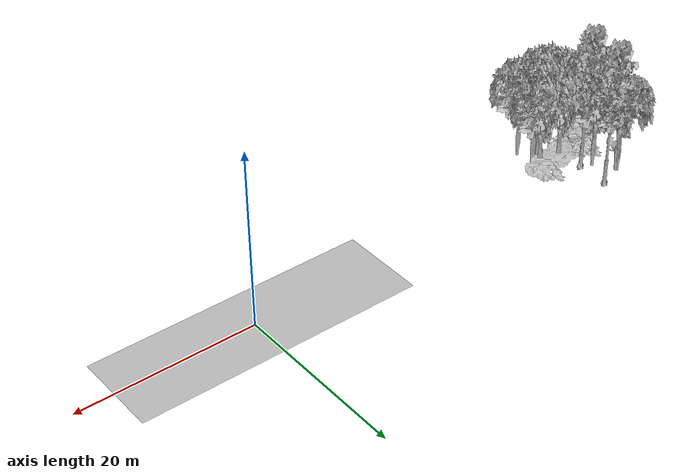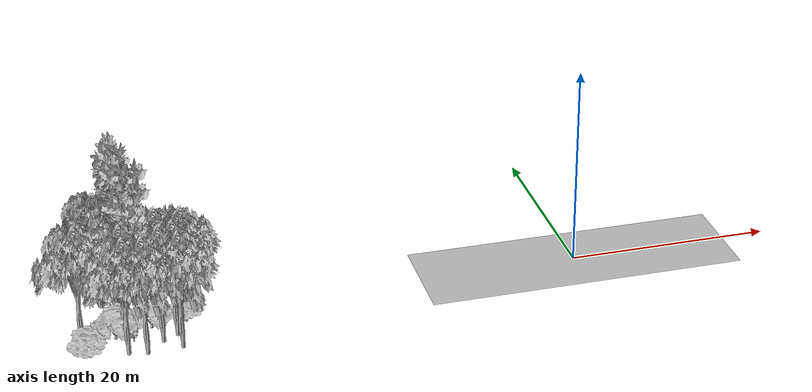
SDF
<sdf version="1.7">
 <world name="default">
  <model name="ground_plane">
   <static>1</static>
   <link name="link">
    <collision name="collision">
     <pose>-50 0 0 0 -0 0</pose>
     <geometry><plane><normal>0 0 1</normal><size>100 100</size></plane></geometry>
     <surface><contact><ode><min_depth>0.01</min_depth><max_vel>0</max_vel></ode></contact></surface>
    </collision>
    <visual name="grass">
     <cast_shadows>0</cast_shadows>
     <geometry>
      <mesh>
       <scale>0.5814285714285714 0.18142857142857144 0.1</scale>
       <uri>file://grass_plane/meshes/grass_plane.dae</uri>
      </mesh>
     </geometry>
    </visual>
   </link>
  </model>
  <model name="Tree 23">
   <static>1</static>
   <pose>-41.37176256263588 -4.454853935062301 0 1.57079 -0 0</pose>
   <link name="link">
    <collision name="collision">
     <geometry><mesh><scale>3.5 5 3.5</scale><uri>model://tree_2/meshes/tree_2.obj</uri></mesh></geometry>
    </collision>
    <visual name="visual">
     <geometry><mesh><scale>3.5 5 3.5</scale><uri>model://tree_2/meshes/tree_2.obj</uri></mesh></geometry>
    </visual>
   </link>
  </model>
  <model name="Tree 27">
   <static>1</static>
   <pose>-46.30135250556976 3.190948742560927 0 1.57079 -0 0</pose>
   <link name="link">
    <collision name="collision">
     <geometry><mesh><scale>3.5 5 3.5</scale><uri>model://tree_2/meshes/tree_2.obj</uri></mesh></geometry>
    </collision>
    <visual name="visual">
     <geometry><mesh><scale>3.5 5 3.5</scale><uri>model://tree_2/meshes/tree_2.obj</uri></mesh></geometry>
    </visual>
   </link>
  </model>
  <model name="Tree 38">
   <static>1</static>
   <pose>-44.737884061568124 -5.737415419953194 0 1.57079 -0 0</pose>
   <link name="link">
    <collision name="collision">
     <geometry><mesh><scale>3.5 5 3.5</scale><uri>model://tree_2/meshes/tree_2.obj</uri></mesh></geometry>
    </collision>
    <visual name="visual">
     <geometry><mesh><scale>3.5 5 3.5</scale><uri>model://tree_2/meshes/tree_2.obj</uri></mesh></geometry>
    </visual>
   </link>
  </model>
  <model name="Tree 51">
   <static>1</static>
   <pose>-45.473820462327836 -2.637676971827874 0 1.57079 -0 0</pose>
   <link name="link">
    <collision name="collision">
     <geometry><mesh><scale>3 2 3</scale><uri>model://tree_3/meshes/tree_3.obj</uri></mesh></geometry>
    </collision>
    <visual name="visual">
     <geometry><mesh><scale>3 2 3</scale><uri>model://tree_3/meshes/tree_3.obj</uri></mesh></geometry>
    </visual>
   </link>
  </model>
  <model name="Tree 55">
   <static>1</static>
   <pose>-48.63088996787695 -2.6575167536044475 0 1.57079 -0 0</pose>
   <link name="link">
    <collision name="collision">
     <geometry><mesh><scale>3.5 5 3.5</scale><uri>model://tree_2/meshes/tree_2.obj</uri></mesh></geometry>
    </collision>
    <visual name="visual">
     <geometry><mesh><scale>3.5 5 3.5</scale><uri>model://tree_2/meshes/tree_2.obj</uri></mesh></geometry>
    </visual>
   </link>
  </model>
  <model name="Tree 70">
   <static>1</static>
   <pose>-43.05283040350833 -6.099827330976208 0 1.57079 -0 0</pose>
   <link name="link">
    <collision name="collision">
     <geometry><mesh><scale>3.5 5 3.5</scale><uri>model://tree_2/meshes/tree_2.obj</uri></mesh></geometry>
    </collision>
    <visual name="visual">
     <geometry><mesh><scale>3.5 5 3.5</scale><uri>model://tree_2/meshes/tree_2.obj</uri></mesh></geometry>
    </visual>
   </link>
  </model>
  <model name="Tree 91">
   <static>1</static>
   <pose>-39.352182510271106 -2.250267082425877 0 1.57079 -0 0</pose>
   <link name="link">
    <collision name="collision">
     <geometry><mesh><scale>3.5 5 3.5</scale><uri>model://tree_2/meshes/tree_2.obj</uri></mesh></geometry>
    </collision>
    <visual name="visual">
     <geometry><mesh><scale>3.5 5 3.5</scale><uri>model://tree_2/meshes/tree_2.obj</uri></mesh></geometry>
    </visual>
   </link>
  </model>
  <model name="Tree 98">
   <static>1</static>
   <pose>-41.24725420808651 -0.9652680922754193 0 1.57079 -0 0</pose>
   <link name="link">
    <collision name="collision">
     <geometry><mesh><scale>3.5 5 3.5</scale><uri>model://tree_2/meshes/tree_2.obj</uri></mesh></geometry>
    </collision>
    <visual name="visual">
     <geometry><mesh><scale>3.5 5 3.5</scale><uri>model://tree_2/meshes/tree_2.obj</uri></mesh></geometry>
    </visual>
   </link>
  </model>
  <model name="Tree 125">
   <static>1</static>
   <pose>-39.96006358677858 -3.6790821889221696 0 1.57079 -0 0</pose>
   <link name="link">
    <collision name="collision">
     <geometry><mesh><scale>3.5 5 3.5</scale><uri>model://tree_2/meshes/tree_2.obj</uri></mesh></geometry>
    </collision>
    <visual name="visual">
     <geometry><mesh><scale>3.5 5 3.5</scale><uri>model://tree_2/meshes/tree_2.obj</uri></mesh></geometry>
    </visual>
   </link>
  </model>
  <model name="Tree 180">
   <static>1</static>
   <pose>-44.68416163700892 -3.3675785920145884 0 1.57079 -0 0</pose>
   <link name="link">
    <collision name="collision">
     <geometry><mesh><scale>3.5 5 3.5</scale><uri>model://tree_2/meshes/tree_2.obj</uri></mesh></geometry>
    </collision>
    <visual name="visual">
     <geometry><mesh><scale>3.5 5 3.5</scale><uri>model://tree_2/meshes/tree_2.obj</uri></mesh></geometry>
    </visual>
   </link>
  </model>
  <model name="Tree 209">
   <static>1</static>
   <pose>-43.72600975508127 3.816114958453369 0 1.57079 -0 0</pose>
   <link name="link">
    <collision name="collision">
     <geometry><mesh><scale>3.5 5 3.5</scale><uri>model://tree_9/meshes/tree_9.obj</uri></mesh></geometry>
    </collision>
    <visual name="visual">
     <geometry><mesh><scale>3.5 5 3.5</scale><uri>model://tree_9/meshes/tree_9.obj</uri></mesh></geometry>
    </visual>
   </link>
  </model>
  <model name="Tree 221">
   <static>1</static>
   <pose>-48.477820969930555 -4.564984445700405 0 1.57079 -0 0</pose>
   <link name="link">
    <collision name="collision">
     <geometry><mesh><scale>4 2.5 4</scale><uri>model://tree_1/meshes/tree_1.obj</uri></mesh></geometry>
    </collision>
    <visual name="visual">
     <geometry><mesh><scale>4 2.5 4</scale><uri>model://tree_1/meshes/tree_1.obj</uri></mesh></geometry>
    </visual>
   </link>
  </model>
  <model name="Tree 269">
   <static>1</static>
   <pose>-43.973505281764496 -0.12062224743946537 0 1.57079 -0 0</pose>
   <link name="link">
    <collision name="collision">
     <geometry><mesh><scale>3.5 5 3.5</scale><uri>model://tree_9/meshes/tree_9.obj</uri></mesh></geometry>
    </collision>
    <visual name="visual">
     <geometry><mesh><scale>3.5 5 3.5</scale><uri>model://tree_9/meshes/tree_9.obj</uri></mesh></geometry>
    </visual>
   </link>
  </model>
  <model name="Tree 313">
   <static>1</static>
   <pose>-38.863257170599454 -1.4212085724091104 0 1.57079 -0 0</pose>
   <link name="link">
    <collision name="collision">
     <geometry><mesh><scale>3.5 5 3.5</scale><uri>model://tree_2/meshes/tree_2.obj</uri></mesh></geometry>
    </collision>
    <visual name="visual">
     <geometry><mesh><scale>3.5 5 3.5</scale><uri>model://tree_2/meshes/tree_2.obj</uri></mesh></geometry>
    </visual>
   </link>
  </model>
  <model name="Tree 354">
   <static>1</static>
   <pose>-44.8558804941226 0.8141054030857298 0 1.57079 -0 0</pose>
   <link name="link">
    <collision name="collision">
     <geometry><mesh><scale>3.5 5 3.5</scale><uri>model://tree_2/meshes/tree_2.obj</uri></mesh></geometry>
    </collision>
    <visual name="visual">
     <geometry><mesh><scale>3.5 5 3.5</scale><uri>model://tree_2/meshes/tree_2.obj</uri></mesh></geometry>
    </visual>
   </link>
  </model>
  <model name="Tree 382">
   <static>1</static>
   <pose>-46.16691186468124 3.089660982659229 0 1.57079 -0 0</pose>
   <link name="link">
    <collision name="collision">
     <geometry><mesh><scale>3.5 5 3.5</scale><uri>model://tree_2/meshes/tree_2.obj</uri></mesh></geometry>
    </collision>
    <visual name="visual">
     <geometry><mesh><scale>3.5 5 3.5</scale><uri>model://tree_2/meshes/tree_2.obj</uri></mesh></geometry>
    </visual>
   </link>
  </model>
  <model name="Tree 457">
   <static>1</static>
   <pose>-38.75180594921305 -0.40977299461486894 0 1.57079 -0 0</pose>
   <link name="link">
    <collision name="collision">
     <geometry><mesh><scale>4 2.5 4</scale><uri>model://tree_1/meshes/tree_1.obj</uri></mesh></geometry>
    </collision>
    <visual name="visual">
     <geometry><mesh><scale>4 2.5 4</scale><uri>model://tree_1/meshes/tree_1.obj</uri></mesh></geometry>
    </visual>
   </link>
  </model>
  <model name="Tree 460">
   <static>1</static>
   <pose>-39.79622888125327 -5.873169644421136 0 1.57079 -0 0</pose>
   <link name="link">
    <collision name="collision">
     <geometry><mesh><scale>3.5 5 3.5</scale><uri>model://tree_2/meshes/tree_2.obj</uri></mesh></geometry>
    </collision>
    <visual name="visual">
     <geometry><mesh><scale>3.5 5 3.5</scale><uri>model://tree_2/meshes/tree_2.obj</uri></mesh></geometry>
    </visual>
   </link>
  </model>
  <model name="Tree 472">
   <static>1</static>
   <pose>-45.00379396895724 0.6633150454280727 0 1.57079 -0 0</pose>
   <link name="link">
    <collision name="collision">
     <geometry><mesh><scale>3.5 5 3.5</scale><uri>model://tree_2/meshes/tree_2.obj</uri></mesh></geometry>
    </collision>
    <visual name="visual">
     <geometry><mesh><scale>3.5 5 3.5</scale><uri>model://tree_2/meshes/tree_2.obj</uri></mesh></geometry>
    </visual>
   </link>
  </model>
  <model name="Tree 530">
   <static>1</static>
   <pose>-41.98511451668072 -1.5792596144856983 0 1.57079 -0 0</pose>
   <link name="link">
    <collision name="collision">
     <geometry><mesh><scale>3 2 3</scale><uri>model://tree_3/meshes/tree_3.obj</uri></mesh></geometry>
    </collision>
    <visual name="visual">
     <geometry><mesh><scale>3 2 3</scale><uri>model://tree_3/meshes/tree_3.obj</uri></mesh></geometry>
    </visual>
   </link>
  </model>
  <model name="Tree 533">
   <static>1</static>
   <pose>-45.24230599026675 -1.3015775336270394 0 1.57079 -0 0</pose>
   <link name="link">
    <collision name="collision">
     <geometry><mesh><scale>4 2.5 4</scale><uri>model://tree_1/meshes/tree_1.obj</uri></mesh></geometry>
    </collision>
    <visual name="visual">
     <geometry><mesh><scale>4 2.5 4</scale><uri>model://tree_1/meshes/tree_1.obj</uri></mesh></geometry>
    </visual>
   </link>
  </model>
  <model name="Bush 2">
   <static>1</static>
   <pose>-43.92542683293107 -3.6577285611696375 0 1.57079 -0 0</pose>
   <link name="link">
    <collision name="collision">
     <geometry><mesh><scale>2 2 2</scale><uri>model://bush_0/meshes/bush_0.obj</uri></mesh></geometry>
     <surface><contact><collide_without_contact>false</collide_without_contact></contact></surface>
    </collision>
    <visual name="visual">
     <geometry><mesh><scale>2 2 2</scale><uri>model://bush_0/meshes/bush_0.obj</uri></mesh></geometry>
    </visual>
   </link>
  </model>
 </world>
</sdf>
